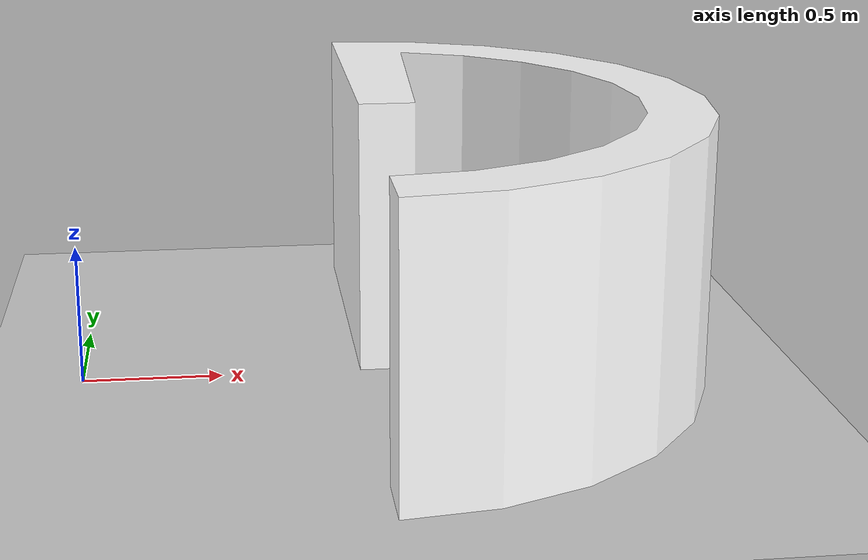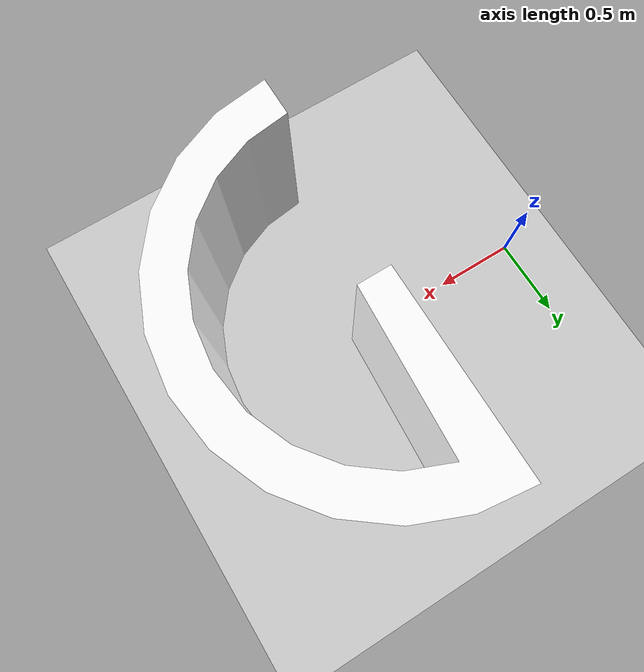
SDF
<?xml version="1.0" ?>
<sdf version="1.4">
  <world name="default">
    <include>
      <uri>model://ground_plane</uri>
    </include>
    <include>
      <uri>model://sun</uri>
    </include>

    <model name="d_shape">
        <static>true</static>
        <link name="link">
            <collision name="d_shape">
                <pose>1.0 0 0 0 0 0</pose>
                <geometry>
                    <mesh>
                        <uri>/home/up201306485/catkin_ws/src/ros_robotics/models/dmap.dae</uri>
                        <scale>1 1 1</scale>
                    </mesh>
                </geometry>
            </collision>

            <visual name="d_shape">
                <pose>1.0 0 0 0 0 0</pose>
                <geometry>
                    <mesh>
                        <uri>/home/up201306485/catkin_ws/src/ros_robotics/models/dmap.dae</uri>
                        <scale>1 1 1</scale>
                    </mesh>
                </geometry>
            </visual>
        </link>
    </model>

    <!-- testing -->
  </world>
</sdf>
